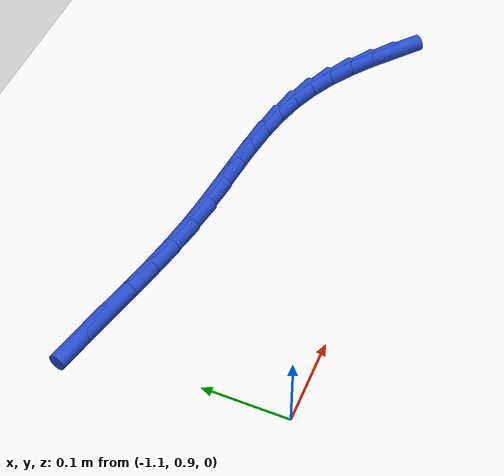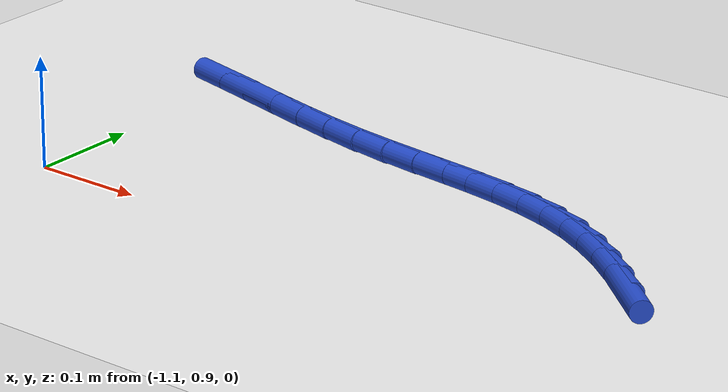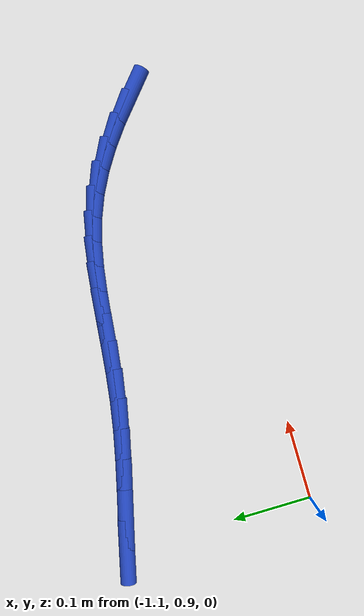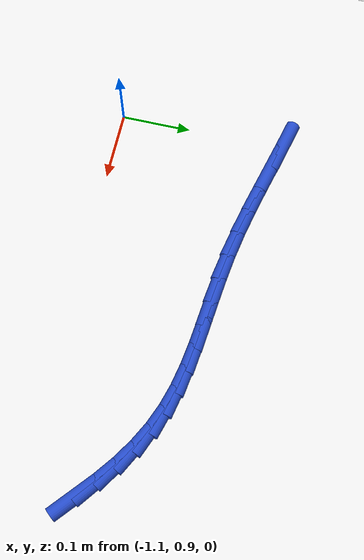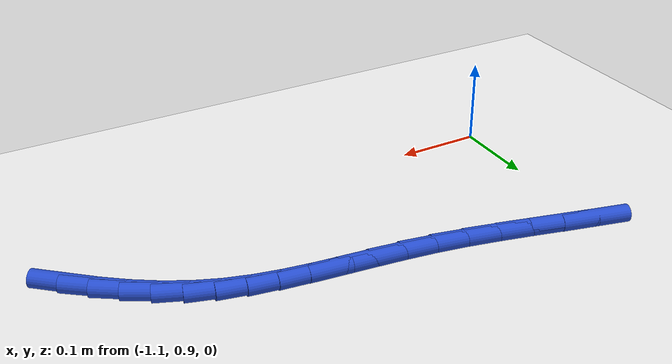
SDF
<sdf version="1.6">
 <world name="default">
  <model name="ground_plane">
   <static>1</static>
   <link name="link">
    <collision name="collision">
     <geometry><plane><normal>0 0 1</normal><size>100 100</size></plane></geometry>
     <surface><friction><ode><mu>100</mu><mu2>50</mu2></ode></friction></surface>
    </collision>
    <visual name="visual">
     <cast_shadows>0</cast_shadows>
     <geometry><plane><normal>0 0 1</normal><size>100 100</size></plane></geometry>
     <material>
      <script><uri>file://media/materials/scripts/gazebo.material</uri><name>Gazebo/WhiteGlow</name></script>
     </material>
    </visual>
   </link>
  </model>
  <model name="line">
   <link name="link_35">
    <pose>-0.5557958638334384 0.9780044571560323 0.01 0 1.57 -0.7100239108926873</pose>
    <collision name="collision">
     <geometry><cylinder><radius>0.01</radius><length>0.08</length></cylinder></geometry>
    </collision>
    <visual name="visual">
     <material>
      <script><name>Gazebo/Blue</name><uri>file://media/materials/scripts/gazebo.material</uri></script>
     </material>
     <geometry><cylinder><radius>0.01</radius><length>0.08</length></cylinder></geometry>
    </visual>
   </link>
   <link name="link_36">
    <pose>-0.5804985451477803 0.9992381469134562 0.01 0 1.57 -0.6480429347056867</pose>
    <collision name="collision">
     <geometry><cylinder><radius>0.01</radius><length>0.08</length></cylinder></geometry>
    </collision>
    <visual name="visual">
     <material>
      <script><name>Gazebo/Blue</name><uri>file://media/materials/scripts/gazebo.material</uri></script>
     </material>
     <geometry><cylinder><radius>0.01</radius><length>0.08</length></cylinder></geometry>
    </visual>
   </link>
   <link name="link_37">
    <pose>-0.605954495358014 1.0185113790607296 0.01 0 1.57 -0.5733414916751446</pose>
    <collision name="collision">
     <geometry><cylinder><radius>0.01</radius><length>0.08</length></cylinder></geometry>
    </collision>
    <visual name="visual">
     <material>
      <script><name>Gazebo/Blue</name><uri>file://media/materials/scripts/gazebo.material</uri></script>
     </material>
     <geometry><cylinder><radius>0.01</radius><length>0.08</length></cylinder></geometry>
    </visual>
   </link>
   <link name="link_38">
    <pose>-0.6322627345460051 1.0354984249593322 0.01 0 1.57 -0.4852819497625088</pose>
    <collision name="collision">
     <geometry><cylinder><radius>0.01</radius><length>0.08</length></cylinder></geometry>
    </collision>
    <visual name="visual">
     <material>
      <script><name>Gazebo/Blue</name><uri>file://media/materials/scripts/gazebo.material</uri></script>
     </material>
     <geometry><cylinder><radius>0.01</radius><length>0.08</length></cylinder></geometry>
    </visual>
   </link>
   <link name="link_39">
    <pose>-0.6595222827936195 1.0498735559707448 0.01 0 1.57 -0.38421383837616646</pose>
    <collision name="collision">
     <geometry><cylinder><radius>0.01</radius><length>0.08</length></cylinder></geometry>
    </collision>
    <visual name="visual">
     <material>
      <script><name>Gazebo/Blue</name><uri>file://media/materials/scripts/gazebo.material</uri></script>
     </material>
     <geometry><cylinder><radius>0.01</radius><length>0.08</length></cylinder></geometry>
    </visual>
   </link>
   <link name="link_40">
    <pose>-0.687830992698426 1.0613189673043768 0.01 0 1.57 -0.2839456350210226</pose>
    <collision name="collision">
     <geometry><cylinder><radius>0.01</radius><length>0.08</length></cylinder></geometry>
    </collision>
    <visual name="visual">
     <material>
      <script><name>Gazebo/Blue</name><uri>file://media/materials/scripts/gazebo.material</uri></script>
     </material>
     <geometry><cylinder><radius>0.01</radius><length>0.08</length></cylinder></geometry>
    </visual>
   </link>
   <link name="link_41">
    <pose>-0.7172304642286119 1.069898647125397 0.01 0 1.57 -0.20467913233329538</pose>
    <collision name="collision">
     <geometry><cylinder><radius>0.01</radius><length>0.08</length></cylinder></geometry>
    </collision>
    <visual name="visual">
     <material>
      <script><name>Gazebo/Blue</name><uri>file://media/materials/scripts/gazebo.material</uri></script>
     </material>
     <geometry><cylinder><radius>0.01</radius><length>0.08</length></cylinder></geometry>
    </visual>
   </link>
   <link name="link_42">
    <pose>-0.7476822299060225 1.076220010410051 0.01 0 1.57 -0.14867417123021967</pose>
    <collision name="collision">
     <geometry><cylinder><radius>0.01</radius><length>0.08</length></cylinder></geometry>
    </collision>
    <visual name="visual">
     <material>
      <script><name>Gazebo/Blue</name><uri>file://media/materials/scripts/gazebo.material</uri></script>
     </material>
     <geometry><cylinder><radius>0.01</radius><length>0.08</length></cylinder></geometry>
    </visual>
   </link>
   <link name="link_43">
    <pose>-0.7791417049519479 1.0809319909450978 0.01 0 1.57 -0.11519504199792617</pose>
    <collision name="collision">
     <geometry><cylinder><radius>0.01</radius><length>0.08</length></cylinder></geometry>
    </collision>
    <visual name="visual">
     <material>
      <script><name>Gazebo/Blue</name><uri>file://media/materials/scripts/gazebo.material</uri></script>
     </material>
     <geometry><cylinder><radius>0.01</radius><length>0.08</length></cylinder></geometry>
    </visual>
   </link>
   <link name="link_44">
    <pose>-0.8115643045876787 1.0846835225172988 0.01 0 1.57 -0.10281253430681717</pose>
    <collision name="collision">
     <geometry><cylinder><radius>0.01</radius><length>0.08</length></cylinder></geometry>
    </collision>
    <visual name="visual">
     <material>
      <script><name>Gazebo/Blue</name><uri>file://media/materials/scripts/gazebo.material</uri></script>
     </material>
     <geometry><cylinder><radius>0.01</radius><length>0.08</length></cylinder></geometry>
    </visual>
   </link>
   <link name="link_45">
    <pose>-0.8449054440345043 1.088123538913414 0.01 0 1.57 -0.10995728506994472</pose>
    <collision name="collision">
     <geometry><cylinder><radius>0.01</radius><length>0.08</length></cylinder></geometry>
    </collision>
    <visual name="visual">
     <material>
      <script><name>Gazebo/Blue</name><uri>file://media/materials/scripts/gazebo.material</uri></script>
     </material>
     <geometry><cylinder><radius>0.01</radius><length>0.08</length></cylinder></geometry>
    </visual>
   </link>
   <link name="link_46">
    <pose>-0.8791205385137147 1.0919009739202035 0.01 0 1.57 -0.13510738535948888</pose>
    <collision name="collision">
     <geometry><cylinder><radius>0.01</radius><length>0.08</length></cylinder></geometry>
    </collision>
    <visual name="visual">
     <material>
      <script><name>Gazebo/Blue</name><uri>file://media/materials/scripts/gazebo.material</uri></script>
     </material>
     <geometry><cylinder><radius>0.01</radius><length>0.08</length></cylinder></geometry>
    </visual>
   </link>
   <link name="link_47">
    <pose>-0.9141650032466005 1.0966647613244282 0.01 0 1.57 -0.17525803667830525</pose>
    <collision name="collision">
     <geometry><cylinder><radius>0.01</radius><length>0.08</length></cylinder></geometry>
    </collision>
    <visual name="visual">
     <material>
      <script><name>Gazebo/Blue</name><uri>file://media/materials/scripts/gazebo.material</uri></script>
     </material>
     <geometry><cylinder><radius>0.01</radius><length>0.08</length></cylinder></geometry>
    </visual>
   </link>
   <link name="link_48">
    <pose>-0.9499839964409275 1.1030073999631802 0.01 0 1.57 -0.2122378254546874</pose>
    <collision name="collision">
     <geometry><cylinder><radius>0.01</radius><length>0.08</length></cylinder></geometry>
    </collision>
    <visual name="visual">
     <material>
      <script><name>Gazebo/Blue</name><uri>file://media/materials/scripts/gazebo.material</uri></script>
     </material>
     <geometry><cylinder><radius>0.01</radius><length>0.08</length></cylinder></geometry>
    </visual>
   </link>
   <link name="link_49">
    <pose>-0.9864015167166088 1.1108547584476753 0.01 0 1.57 -0.23606342272071446</pose>
    <collision name="collision">
     <geometry><cylinder><radius>0.01</radius><length>0.08</length></cylinder></geometry>
    </collision>
    <visual name="visual">
     <material>
      <script><name>Gazebo/Blue</name><uri>file://media/materials/scripts/gazebo.material</uri></script>
     </material>
     <geometry><cylinder><radius>0.01</radius><length>0.08</length></cylinder></geometry>
    </visual>
   </link>
   <link name="link_50">
    <pose>-1.0231624728860538 1.1196975466272503 0.01 0 1.57 -0.24777251034618017</pose>
    <collision name="collision">
     <geometry><cylinder><radius>0.01</radius><length>0.08</length></cylinder></geometry>
    </collision>
    <visual name="visual">
     <material>
      <script><name>Gazebo/Blue</name><uri>file://media/materials/scripts/gazebo.material</uri></script>
     </material>
     <geometry><cylinder><radius>0.01</radius><length>0.08</length></cylinder></geometry>
    </visual>
   </link>
   <link name="link_51">
    <pose>-1.06001041353372 1.129018990262824 0.01 0 1.57 -0.24789425618512728</pose>
    <collision name="collision">
     <geometry><cylinder><radius>0.01</radius><length>0.08</length></cylinder></geometry>
    </collision>
    <visual name="visual">
     <material>
      <script><name>Gazebo/Blue</name><uri>file://media/materials/scripts/gazebo.material</uri></script>
     </material>
     <geometry><cylinder><radius>0.01</radius><length>0.08</length></cylinder></geometry>
    </visual>
   </link>
   <link name="link_52">
    <pose>-1.096688887244063 1.138302315115316 0.01 0 1.57 -0.23627041594963016</pose>
    <collision name="collision">
     <geometry><cylinder><radius>0.01</radius><length>0.08</length></cylinder></geometry>
    </collision>
    <visual name="visual">
     <material>
      <script><name>Gazebo/Blue</name><uri>file://media/materials/scripts/gazebo.material</uri></script>
     </material>
     <geometry><cylinder><radius>0.01</radius><length>0.08</length></cylinder></geometry>
    </visual>
   </link>
  </model>
 </world>
</sdf>
